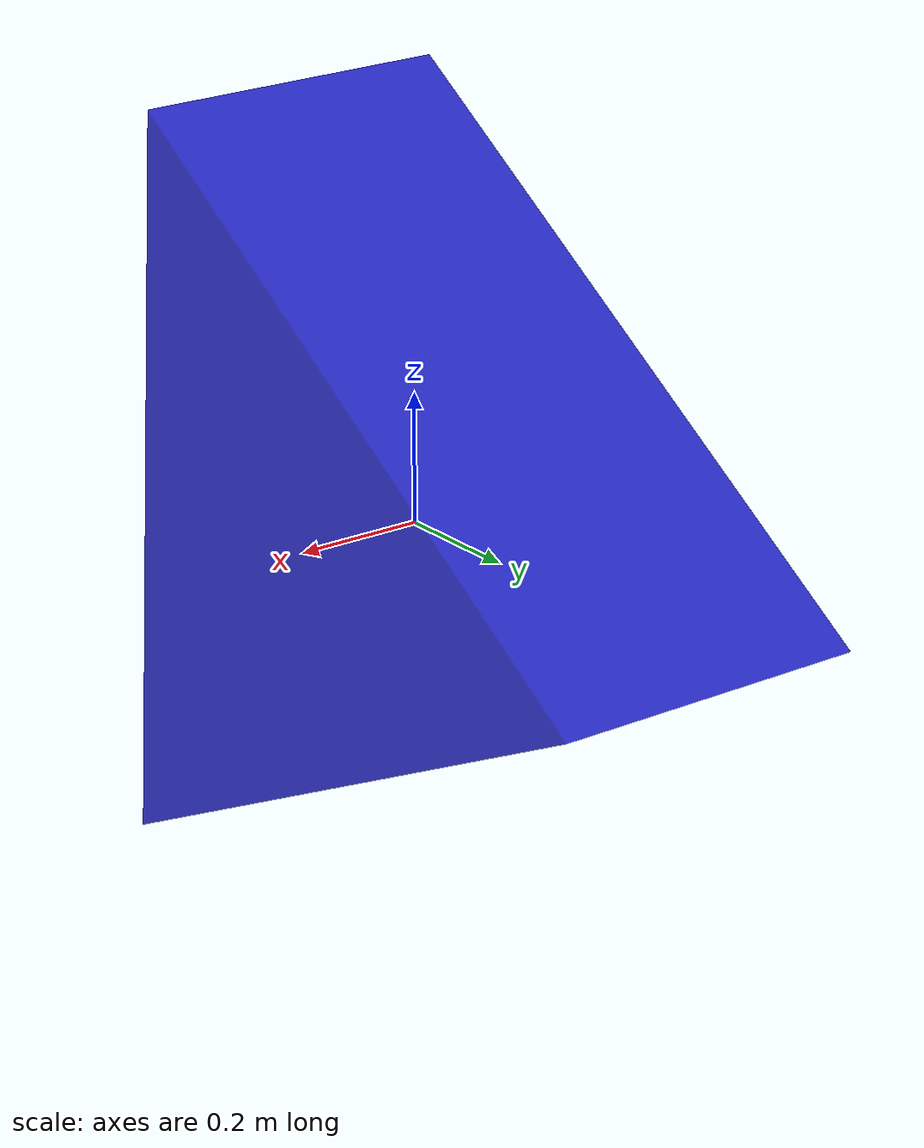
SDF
<?xml version="1.0"?>
<sdf version="1.7">

  <!-- world->ghost_body_y->ghost_body_z_sphere-->
  <model name="simple_cuboid_1m">
    <!-- The model for a solid box of uniform density. -->
    <link name="ghost_body_y">
      <inertial>
        <mass>1.0e-6</mass>
        <inertia>
          <ixx>1.0e-6</ixx>
          <ixy>0</ixy>
          <ixz>0</ixz>
          <iyy>1.0e-6</iyy>
          <iyz>0</iyz>
          <izz>1.0e-6</izz>
        </inertia>
      </inertial>
    </link>

    <link name="ghost_body_z">
      <inertial>
        <mass>1.0e-6</mass>
        <inertia>
          <ixx>1.0e-6</ixx>
          <ixy>0</ixy>
          <ixz>0</ixz>
          <iyy>1.0e-6</iyy>
          <iyz>0</iyz>
          <izz>1.0e-6</izz>
        </inertia>
      </inertial>
    </link>

    <joint name="y_slider" type="prismatic">
      <parent>world</parent>
      <child>ghost_body_y</child>
      <axis>
        <xyz>0 1 0</xyz>
        <!-- Drake attaches an actuator to all joints with a non-zero effort
             limit. We do not want an actuator for this joint. -->
        <limit>
          <effort>0</effort>
        </limit>
	<dynamics>
	  <damping>100.0</damping>
	</dynamics>
      </axis>
    </joint>

    <joint name="z_slider" type="prismatic">
      <parent>ghost_body_y</parent>
      <child>ghost_body_z</child>
      <axis>
        <xyz>0 0 1</xyz>
        <!-- Drake attaches an actuator to all joints with a non-zero effort
             limit. We do not want an actuator for this joint and therefore we
             set a zero effort limit. -->
        <limit>
          <effort>0</effort>
        </limit>
	<dynamics>
	  <damping>100.0</damping>
	</dynamics>
      </axis>
    </joint>

    <joint name="rotation" type="revolute">
      <parent>ghost_body_z</parent>
      <child>box</child>
      <axis>
        <xyz>1 0 0</xyz>
        <!-- Drake attaches an actuator to all joints with a non-zero effort
             limit. We do not want an actuator for this joint and therefore we
             set a zero effort limit. -->
        <limit>
          <effort>0</effort>
        </limit>
	<dynamics>
	  <damping>100.0</damping>
	</dynamics>
      </axis>
    </joint>

    <link name="box">
      <inertial>
        <mass>5.0</mass>
        <inertia>
          <ixx>0.166666666666667</ixx>
          <ixy>0</ixy>
          <ixz>0</ixz>
          <iyy>0.166666666666667</iyy>
          <iyz>0</iyz>
          <izz>0.166666666666667</izz>
        </inertia>
      </inertial>

      <visual name="box_visual">
        <geometry>
          <mesh>
            <uri>package://quasistatic_simulator/meshes/triangle_planar.obj</uri>
            <scale>0.001 0.001 0.001</scale>
          </mesh>
        </geometry>
        <material>
          <diffuse>0.0 0.0 0.8 0.8</diffuse>
        </material>
      </visual>

      <collision name="collision">
        <geometry>
          <mesh>
            <uri>package://quasistatic_simulator/meshes/triangle_planar.obj</uri>
            <scale>0.001 0.001 0.001</scale>
          </mesh>
        </geometry>
        <surface>
          <friction>
            <ode>
              <mu>0.5</mu>
              <mu2>0.5</mu2>
            </ode>
          </friction>
        </surface>
      </collision>
    </link>
  </model>
</sdf>
